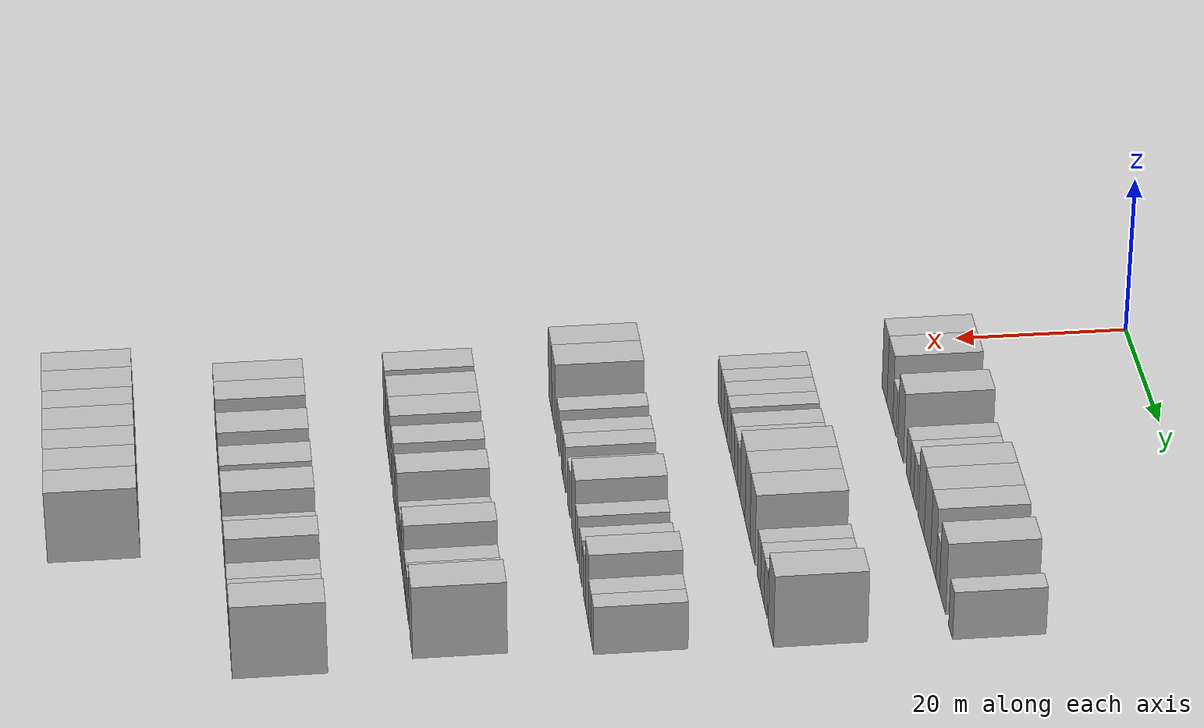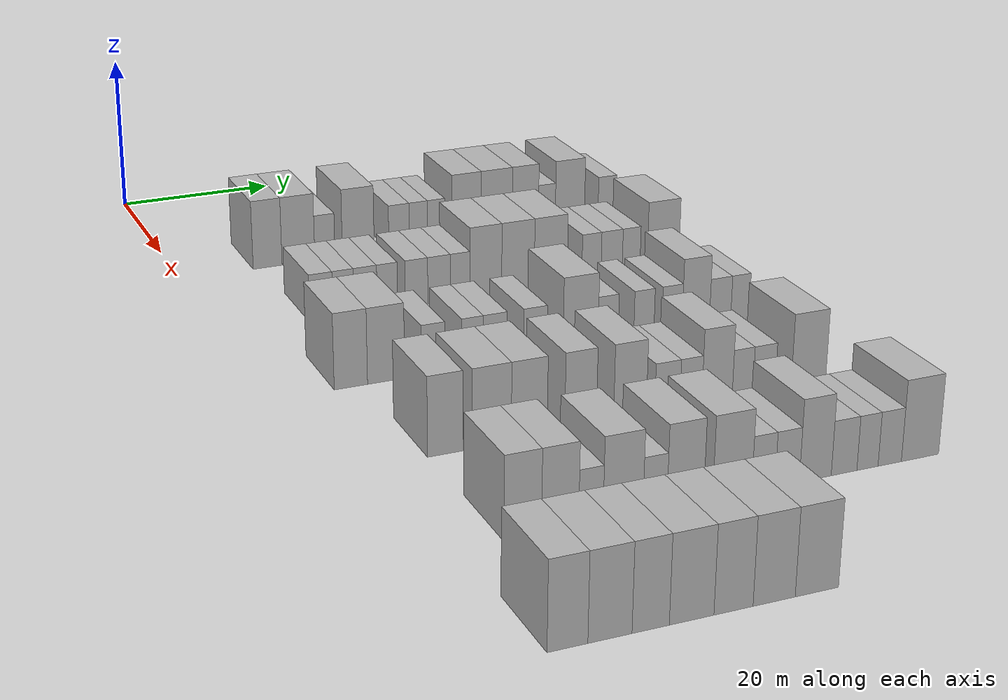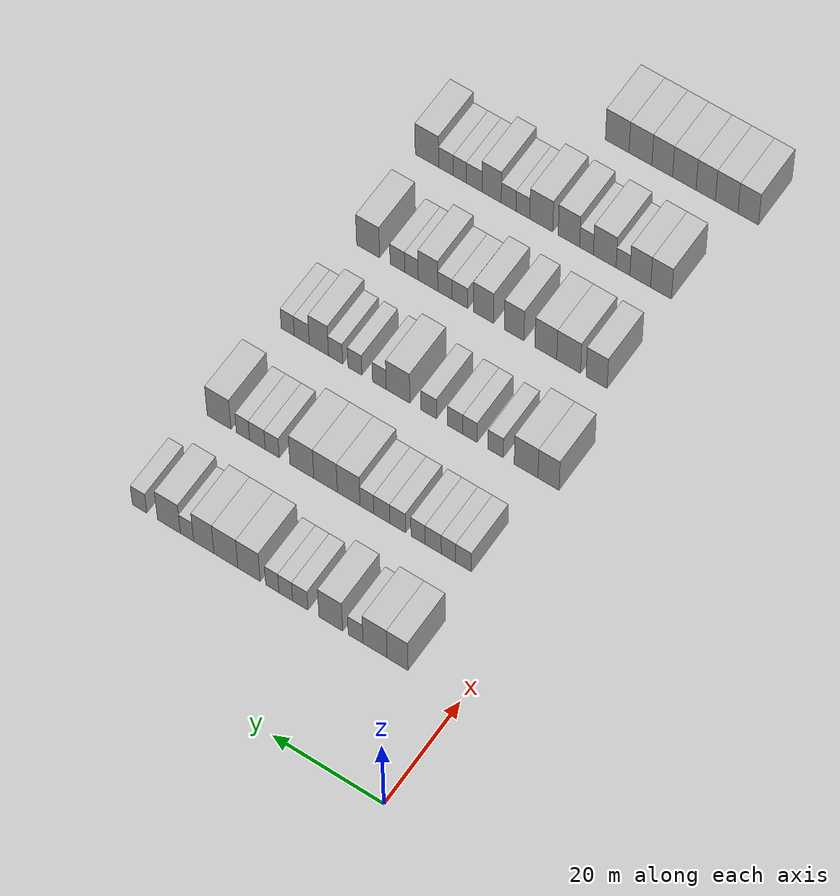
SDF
<sdf version="1.6">
 <world name="default">
  <model name="building_93">
   <static>1</static>
   <pose>25.0000 11.1989 0 0.000000 0.000000 0.000000</pose>
   <link name="link">
    <pose>0 0 4.50 0 0 0</pose>
    <collision name="collision"><geometry><box><size>10.0000 3.7826 9.0000</size></box></geometry></collision>
    <visual name="visual">
     <cast_shadows>0</cast_shadows>
     <geometry><box><size>10.0000 3.7826 9.0000</size></box></geometry>
     <material>
      <script>
       <uri>model://HANNAS_wall/materials/scripts</uri>
       <uri>model://HANNAS_wall/materials/textures</uri>
       <name>vrc/HANNAS_wall</name>
      </script>
     </material>
    </visual>
   </link>
  </model>
  <model name="building_94">
   <static>1</static>
   <pose>25.0000 15.2601 0 0.000000 0.000000 0.000000</pose>
   <link name="link">
    <pose>0 0 4.50 0 0 0</pose>
    <collision name="collision"><geometry><box><size>10.0000 4.3400 9.0000</size></box></geometry></collision>
    <visual name="visual">
     <cast_shadows>0</cast_shadows>
     <geometry><box><size>10.0000 4.3400 9.0000</size></box></geometry>
     <material>
      <script>
       <uri>model://HANNAS_wall/materials/scripts</uri>
       <uri>model://HANNAS_wall/materials/textures</uri>
       <name>vrc/HANNAS_wall</name>
      </script>
     </material>
    </visual>
   </link>
  </model>
  <model name="building_95">
   <static>1</static>
   <pose>25.0000 18.7738 0 0.000000 0.000000 0.000000</pose>
   <link name="link">
    <pose>0 0 3.00 0 0 0</pose>
    <collision name="collision"><geometry><box><size>10.0000 2.6872 6.0000</size></box></geometry></collision>
    <visual name="visual">
     <cast_shadows>0</cast_shadows>
     <geometry><box><size>10.0000 2.6872 6.0000</size></box></geometry>
     <material>
      <script>
       <uri>model://HANNAS_wall/materials/scripts</uri>
       <uri>model://HANNAS_wall/materials/textures</uri>
       <name>vrc/HANNAS_wall</name>
      </script>
     </material>
    </visual>
   </link>
  </model>
  <model name="building_96">
   <static>1</static>
   <pose>25.0000 23.2702 0 0.000000 0.000000 0.000000</pose>
   <link name="link">
    <pose>0 0 4.50 0 0 0</pose>
    <collision name="collision"><geometry><box><size>10.0000 4.3056 9.0000</size></box></geometry></collision>
    <visual name="visual">
     <cast_shadows>0</cast_shadows>
     <geometry><box><size>10.0000 4.3056 9.0000</size></box></geometry>
     <material>
      <script>
       <uri>model://HANNAS_wall/materials/scripts</uri>
       <uri>model://HANNAS_wall/materials/textures</uri>
       <name>vrc/HANNAS_wall</name>
      </script>
     </material>
    </visual>
   </link>
  </model>
  <model name="building_97">
   <static>1</static>
   <pose>25.0000 28.8278 0 0.000000 0.000000 0.000000</pose>
   <link name="link">
    <pose>0 0 3.00 0 0 0</pose>
    <collision name="collision"><geometry><box><size>10.0000 2.8097 6.0000</size></box></geometry></collision>
    <visual name="visual">
     <cast_shadows>0</cast_shadows>
     <geometry><box><size>10.0000 2.8097 6.0000</size></box></geometry>
     <material>
      <script>
       <uri>model://HANNAS_wall/materials/scripts</uri>
       <uri>model://HANNAS_wall/materials/textures</uri>
       <name>vrc/HANNAS_wall</name>
      </script>
     </material>
    </visual>
   </link>
  </model>
  <model name="building_98">
   <static>1</static>
   <pose>25.0000 31.4925 0 0.000000 0.000000 0.000000</pose>
   <link name="link">
    <pose>0 0 3.00 0 0 0</pose>
    <collision name="collision"><geometry><box><size>10.0000 2.5195 6.0000</size></box></geometry></collision>
    <visual name="visual">
     <cast_shadows>0</cast_shadows>
     <geometry><box><size>10.0000 2.5195 6.0000</size></box></geometry>
     <material>
      <script>
       <uri>model://HANNAS_wall/materials/scripts</uri>
       <uri>model://HANNAS_wall/materials/textures</uri>
       <name>vrc/HANNAS_wall</name>
      </script>
     </material>
    </visual>
   </link>
  </model>
  <model name="building_99">
   <static>1</static>
   <pose>25.0000 33.9566 0 0.000000 0.000000 0.000000</pose>
   <link name="link">
    <pose>0 0 3.00 0 0 0</pose>
    <collision name="collision"><geometry><box><size>10.0000 2.4087 6.0000</size></box></geometry></collision>
    <visual name="visual">
     <cast_shadows>0</cast_shadows>
     <geometry><box><size>10.0000 2.4087 6.0000</size></box></geometry>
     <material>
      <script>
       <uri>model://HANNAS_wall/materials/scripts</uri>
       <uri>model://HANNAS_wall/materials/textures</uri>
       <name>vrc/HANNAS_wall</name>
      </script>
     </material>
    </visual>
   </link>
  </model>
  <model name="building_100">
   <static>1</static>
   <pose>25.0000 38.2183 0 0.000000 0.000000 0.000000</pose>
   <link name="link">
    <pose>0 0 4.50 0 0 0</pose>
    <collision name="collision"><geometry><box><size>10.0000 4.1148 9.0000</size></box></geometry></collision>
    <visual name="visual">
     <cast_shadows>0</cast_shadows>
     <geometry><box><size>10.0000 4.1148 9.0000</size></box></geometry>
     <material>
      <script>
       <uri>model://HANNAS_wall/materials/scripts</uri>
       <uri>model://HANNAS_wall/materials/textures</uri>
       <name>vrc/HANNAS_wall</name>
      </script>
     </material>
    </visual>
   </link>
  </model>
  <model name="building_101">
   <static>1</static>
   <pose>25.0000 42.4826 0 0.000000 0.000000 0.000000</pose>
   <link name="link">
    <pose>0 0 4.50 0 0 0</pose>
    <collision name="collision"><geometry><box><size>10.0000 4.4137 9.0000</size></box></geometry></collision>
    <visual name="visual">
     <cast_shadows>0</cast_shadows>
     <geometry><box><size>10.0000 4.4137 9.0000</size></box></geometry>
     <material>
      <script>
       <uri>model://HANNAS_wall/materials/scripts</uri>
       <uri>model://HANNAS_wall/materials/textures</uri>
       <name>vrc/HANNAS_wall</name>
      </script>
     </material>
    </visual>
   </link>
  </model>
  <model name="building_102">
   <static>1</static>
   <pose>25.0000 46.5693 0 0.000000 0.000000 0.000000</pose>
   <link name="link">
    <pose>0 0 4.50 0 0 0</pose>
    <collision name="collision"><geometry><box><size>10.0000 3.7597 9.0000</size></box></geometry></collision>
    <visual name="visual">
     <cast_shadows>0</cast_shadows>
     <geometry><box><size>10.0000 3.7597 9.0000</size></box></geometry>
     <material>
      <script>
       <uri>model://HANNAS_wall/materials/scripts</uri>
       <uri>model://HANNAS_wall/materials/textures</uri>
       <name>vrc/HANNAS_wall</name>
      </script>
     </material>
    </visual>
   </link>
  </model>
  <model name="building_103">
   <static>1</static>
   <pose>25.0000 49.6717 0 0.000000 0.000000 0.000000</pose>
   <link name="link">
    <pose>0 0 3.00 0 0 0</pose>
    <collision name="collision"><geometry><box><size>10.0000 2.4451 6.0000</size></box></geometry></collision>
    <visual name="visual">
     <cast_shadows>0</cast_shadows>
     <geometry><box><size>10.0000 2.4451 6.0000</size></box></geometry>
     <material>
      <script>
       <uri>model://HANNAS_wall/materials/scripts</uri>
       <uri>model://HANNAS_wall/materials/textures</uri>
       <name>vrc/HANNAS_wall</name>
      </script>
     </material>
    </visual>
   </link>
  </model>
  <model name="building_104">
   <static>1</static>
   <pose>25.0000 53.0266 0 0.000000 0.000000 0.000000</pose>
   <link name="link">
    <pose>0 0 4.50 0 0 0</pose>
    <collision name="collision"><geometry><box><size>10.0000 4.2647 9.0000</size></box></geometry></collision>
    <visual name="visual">
     <cast_shadows>0</cast_shadows>
     <geometry><box><size>10.0000 4.2647 9.0000</size></box></geometry>
     <material>
      <script>
       <uri>model://HANNAS_wall/materials/scripts</uri>
       <uri>model://HANNAS_wall/materials/textures</uri>
       <name>vrc/HANNAS_wall</name>
      </script>
     </material>
    </visual>
   </link>
  </model>
  <model name="building_105">
   <static>1</static>
   <pose>25.0000 58.4947 0 0.000000 0.000000 0.000000</pose>
   <link name="link">
    <pose>0 0 3.00 0 0 0</pose>
    <collision name="collision"><geometry><box><size>10.0000 2.6715 6.0000</size></box></geometry></collision>
    <visual name="visual">
     <cast_shadows>0</cast_shadows>
     <geometry><box><size>10.0000 2.6715 6.0000</size></box></geometry>
     <material>
      <script>
       <uri>model://HANNAS_wall/materials/scripts</uri>
       <uri>model://HANNAS_wall/materials/textures</uri>
       <name>vrc/HANNAS_wall</name>
      </script>
     </material>
    </visual>
   </link>
  </model>
  <model name="building_257">
   <static>1</static>
   <pose>44.0000 12.0426 0 0.000000 0.000000 0.000000</pose>
   <link name="link">
    <pose>0 0 3.00 0 0 0</pose>
    <collision name="collision"><geometry><box><size>10.0000 2.8784 6.0000</size></box></geometry></collision>
    <visual name="visual">
     <cast_shadows>0</cast_shadows>
     <geometry><box><size>10.0000 2.8784 6.0000</size></box></geometry>
     <material>
      <script>
       <uri>model://HANNAS_wall/materials/scripts</uri>
       <uri>model://HANNAS_wall/materials/textures</uri>
       <name>vrc/HANNAS_wall</name>
      </script>
     </material>
    </visual>
   </link>
  </model>
  <model name="building_258">
   <static>1</static>
   <pose>44.0000 14.7832 0 0.000000 0.000000 0.000000</pose>
   <link name="link">
    <pose>0 0 3.00 0 0 0</pose>
    <collision name="collision"><geometry><box><size>10.0000 2.6027 6.0000</size></box></geometry></collision>
    <visual name="visual">
     <cast_shadows>0</cast_shadows>
     <geometry><box><size>10.0000 2.6027 6.0000</size></box></geometry>
     <material>
      <script>
       <uri>model://HANNAS_wall/materials/scripts</uri>
       <uri>model://HANNAS_wall/materials/textures</uri>
       <name>vrc/HANNAS_wall</name>
      </script>
     </material>
    </visual>
   </link>
  </model>
  <model name="building_259">
   <static>1</static>
   <pose>44.0000 17.5589 0 0.000000 0.000000 0.000000</pose>
   <link name="link">
    <pose>0 0 3.00 0 0 0</pose>
    <collision name="collision"><geometry><box><size>10.0000 2.9488 6.0000</size></box></geometry></collision>
    <visual name="visual">
     <cast_shadows>0</cast_shadows>
     <geometry><box><size>10.0000 2.9488 6.0000</size></box></geometry>
     <material>
      <script>
       <uri>model://HANNAS_wall/materials/scripts</uri>
       <uri>model://HANNAS_wall/materials/textures</uri>
       <name>vrc/HANNAS_wall</name>
      </script>
     </material>
    </visual>
   </link>
  </model>
  <model name="building_260">
   <static>1</static>
   <pose>44.0000 20.3204 0 0.000000 0.000000 0.000000</pose>
   <link name="link">
    <pose>0 0 3.00 0 0 0</pose>
    <collision name="collision"><geometry><box><size>10.0000 2.5742 6.0000</size></box></geometry></collision>
    <visual name="visual">
     <cast_shadows>0</cast_shadows>
     <geometry><box><size>10.0000 2.5742 6.0000</size></box></geometry>
     <material>
      <script>
       <uri>model://HANNAS_wall/materials/scripts</uri>
       <uri>model://HANNAS_wall/materials/textures</uri>
       <name>vrc/HANNAS_wall</name>
      </script>
     </material>
    </visual>
   </link>
  </model>
  <model name="building_261">
   <static>1</static>
   <pose>44.0000 24.0491 0 0.000000 0.000000 0.000000</pose>
   <link name="link">
    <pose>0 0 3.00 0 0 0</pose>
    <collision name="collision"><geometry><box><size>10.0000 2.8832 6.0000</size></box></geometry></collision>
    <visual name="visual">
     <cast_shadows>0</cast_shadows>
     <geometry><box><size>10.0000 2.8832 6.0000</size></box></geometry>
     <material>
      <script>
       <uri>model://HANNAS_wall/materials/scripts</uri>
       <uri>model://HANNAS_wall/materials/textures</uri>
       <name>vrc/HANNAS_wall</name>
      </script>
     </material>
    </visual>
   </link>
  </model>
  <model name="building_262">
   <static>1</static>
   <pose>44.0000 26.9556 0 0.000000 0.000000 0.000000</pose>
   <link name="link">
    <pose>0 0 3.00 0 0 0</pose>
    <collision name="collision"><geometry><box><size>10.0000 2.9300 6.0000</size></box></geometry></collision>
    <visual name="visual">
     <cast_shadows>0</cast_shadows>
     <geometry><box><size>10.0000 2.9300 6.0000</size></box></geometry>
     <material>
      <script>
       <uri>model://HANNAS_wall/materials/scripts</uri>
       <uri>model://HANNAS_wall/materials/textures</uri>
       <name>vrc/HANNAS_wall</name>
      </script>
     </material>
    </visual>
   </link>
  </model>
  <model name="building_263">
   <static>1</static>
   <pose>44.0000 29.6811 0 0.000000 0.000000 0.000000</pose>
   <link name="link">
    <pose>0 0 3.00 0 0 0</pose>
    <collision name="collision"><geometry><box><size>10.0000 2.5209 6.0000</size></box></geometry></collision>
    <visual name="visual">
     <cast_shadows>0</cast_shadows>
     <geometry><box><size>10.0000 2.5209 6.0000</size></box></geometry>
     <material>
      <script>
       <uri>model://HANNAS_wall/materials/scripts</uri>
       <uri>model://HANNAS_wall/materials/textures</uri>
       <name>vrc/HANNAS_wall</name>
      </script>
     </material>
    </visual>
   </link>
  </model>
  <model name="building_264">
   <static>1</static>
   <pose>44.0000 33.0307 0 0.000000 0.000000 0.000000</pose>
   <link name="link">
    <pose>0 0 4.50 0 0 0</pose>
    <collision name="collision"><geometry><box><size>10.0000 4.1783 9.0000</size></box></geometry></collision>
    <visual name="visual">
     <cast_shadows>0</cast_shadows>
     <geometry><box><size>10.0000 4.1783 9.0000</size></box></geometry>
     <material>
      <script>
       <uri>model://HANNAS_wall/materials/scripts</uri>
       <uri>model://HANNAS_wall/materials/textures</uri>
       <name>vrc/HANNAS_wall</name>
      </script>
     </material>
    </visual>
   </link>
  </model>
  <model name="building_265">
   <static>1</static>
   <pose>44.0000 37.2893 0 0.000000 0.000000 0.000000</pose>
   <link name="link">
    <pose>0 0 4.50 0 0 0</pose>
    <collision name="collision"><geometry><box><size>10.0000 4.3389 9.0000</size></box></geometry></collision>
    <visual name="visual">
     <cast_shadows>0</cast_shadows>
     <geometry><box><size>10.0000 4.3389 9.0000</size></box></geometry>
     <material>
      <script>
       <uri>model://HANNAS_wall/materials/scripts</uri>
       <uri>model://HANNAS_wall/materials/textures</uri>
       <name>vrc/HANNAS_wall</name>
      </script>
     </material>
    </visual>
   </link>
  </model>
  <model name="building_266">
   <static>1</static>
   <pose>44.0000 41.6738 0 0.000000 0.000000 0.000000</pose>
   <link name="link">
    <pose>0 0 4.50 0 0 0</pose>
    <collision name="collision"><geometry><box><size>10.0000 4.4302 9.0000</size></box></geometry></collision>
    <visual name="visual">
     <cast_shadows>0</cast_shadows>
     <geometry><box><size>10.0000 4.4302 9.0000</size></box></geometry>
     <material>
      <script>
       <uri>model://HANNAS_wall/materials/scripts</uri>
       <uri>model://HANNAS_wall/materials/textures</uri>
       <name>vrc/HANNAS_wall</name>
      </script>
     </material>
    </visual>
   </link>
  </model>
  <model name="building_267">
   <static>1</static>
   <pose>44.0000 47.2002 0 0.000000 0.000000 0.000000</pose>
   <link name="link">
    <pose>0 0 3.00 0 0 0</pose>
    <collision name="collision"><geometry><box><size>10.0000 2.6225 6.0000</size></box></geometry></collision>
    <visual name="visual">
     <cast_shadows>0</cast_shadows>
     <geometry><box><size>10.0000 2.6225 6.0000</size></box></geometry>
     <material>
      <script>
       <uri>model://HANNAS_wall/materials/scripts</uri>
       <uri>model://HANNAS_wall/materials/textures</uri>
       <name>vrc/HANNAS_wall</name>
      </script>
     </material>
    </visual>
   </link>
  </model>
  <model name="building_268">
   <static>1</static>
   <pose>44.0000 49.9690 0 0.000000 0.000000 0.000000</pose>
   <link name="link">
    <pose>0 0 3.00 0 0 0</pose>
    <collision name="collision"><geometry><box><size>10.0000 2.9151 6.0000</size></box></geometry></collision>
    <visual name="visual">
     <cast_shadows>0</cast_shadows>
     <geometry><box><size>10.0000 2.9151 6.0000</size></box></geometry>
     <material>
      <script>
       <uri>model://HANNAS_wall/materials/scripts</uri>
       <uri>model://HANNAS_wall/materials/textures</uri>
       <name>vrc/HANNAS_wall</name>
      </script>
     </material>
    </visual>
   </link>
  </model>
  <model name="building_269">
   <static>1</static>
   <pose>44.0000 52.6610 0 0.000000 0.000000 0.000000</pose>
   <link name="link">
    <pose>0 0 3.00 0 0 0</pose>
    <collision name="collision"><geometry><box><size>10.0000 2.4689 6.0000</size></box></geometry></collision>
    <visual name="visual">
     <cast_shadows>0</cast_shadows>
     <geometry><box><size>10.0000 2.4689 6.0000</size></box></geometry>
     <material>
      <script>
       <uri>model://HANNAS_wall/materials/scripts</uri>
       <uri>model://HANNAS_wall/materials/textures</uri>
       <name>vrc/HANNAS_wall</name>
      </script>
     </material>
    </visual>
   </link>
  </model>
  <model name="building_270">
   <static>1</static>
   <pose>44.0000 57.1227 0 0.000000 0.000000 0.000000</pose>
   <link name="link">
    <pose>0 0 4.50 0 0 0</pose>
    <collision name="collision"><geometry><box><size>10.0000 4.4546 9.0000</size></box></geometry></collision>
    <visual name="visual">
     <cast_shadows>0</cast_shadows>
     <geometry><box><size>10.0000 4.4546 9.0000</size></box></geometry>
     <material>
      <script>
       <uri>model://HANNAS_wall/materials/scripts</uri>
       <uri>model://HANNAS_wall/materials/textures</uri>
       <name>vrc/HANNAS_wall</name>
      </script>
     </material>
    </visual>
   </link>
  </model>
  <model name="building_438">
   <static>1</static>
   <pose>63.0000 9.1700 0 0.000000 0.000000 0.000000</pose>
   <link name="link">
    <pose>0 0 4.50 0 0 0</pose>
    <collision name="collision"><geometry><box><size>10.0000 3.8497 9.0000</size></box></geometry></collision>
    <visual name="visual">
     <cast_shadows>0</cast_shadows>
     <geometry><box><size>10.0000 3.8497 9.0000</size></box></geometry>
     <material>
      <script>
       <uri>model://HANNAS_wall/materials/scripts</uri>
       <uri>model://HANNAS_wall/materials/textures</uri>
       <name>vrc/HANNAS_wall</name>
      </script>
     </material>
    </visual>
   </link>
  </model>
  <model name="building_439">
   <static>1</static>
   <pose>63.0000 13.2630 0 0.000000 0.000000 0.000000</pose>
   <link name="link">
    <pose>0 0 4.50 0 0 0</pose>
    <collision name="collision"><geometry><box><size>10.0000 4.3361 9.0000</size></box></geometry></collision>
    <visual name="visual">
     <cast_shadows>0</cast_shadows>
     <geometry><box><size>10.0000 4.3361 9.0000</size></box></geometry>
     <material>
      <script>
       <uri>model://HANNAS_wall/materials/scripts</uri>
       <uri>model://HANNAS_wall/materials/textures</uri>
       <name>vrc/HANNAS_wall</name>
      </script>
     </material>
    </visual>
   </link>
  </model>
  <model name="building_440">
   <static>1</static>
   <pose>63.0000 18.8301 0 0.000000 0.000000 0.000000</pose>
   <link name="link">
    <pose>0 0 3.00 0 0 0</pose>
    <collision name="collision"><geometry><box><size>10.0000 2.7982 6.0000</size></box></geometry></collision>
    <visual name="visual">
     <cast_shadows>0</cast_shadows>
     <geometry><box><size>10.0000 2.7982 6.0000</size></box></geometry>
     <material>
      <script>
       <uri>model://HANNAS_wall/materials/scripts</uri>
       <uri>model://HANNAS_wall/materials/textures</uri>
       <name>vrc/HANNAS_wall</name>
      </script>
     </material>
    </visual>
   </link>
  </model>
  <model name="building_441">
   <static>1</static>
   <pose>63.0000 23.5392 0 0.000000 0.000000 0.000000</pose>
   <link name="link">
    <pose>0 0 3.00 0 0 0</pose>
    <collision name="collision"><geometry><box><size>10.0000 2.6200 6.0000</size></box></geometry></collision>
    <visual name="visual">
     <cast_shadows>0</cast_shadows>
     <geometry><box><size>10.0000 2.6200 6.0000</size></box></geometry>
     <material>
      <script>
       <uri>model://HANNAS_wall/materials/scripts</uri>
       <uri>model://HANNAS_wall/materials/textures</uri>
       <name>vrc/HANNAS_wall</name>
      </script>
     </material>
    </visual>
   </link>
  </model>
  <model name="building_442">
   <static>1</static>
   <pose>63.0000 26.2897 0 0.000000 0.000000 0.000000</pose>
   <link name="link">
    <pose>0 0 3.00 0 0 0</pose>
    <collision name="collision"><geometry><box><size>10.0000 2.8811 6.0000</size></box></geometry></collision>
    <visual name="visual">
     <cast_shadows>0</cast_shadows>
     <geometry><box><size>10.0000 2.8811 6.0000</size></box></geometry>
     <material>
      <script>
       <uri>model://HANNAS_wall/materials/scripts</uri>
       <uri>model://HANNAS_wall/materials/textures</uri>
       <name>vrc/HANNAS_wall</name>
      </script>
     </material>
    </visual>
   </link>
  </model>
  <model name="building_443">
   <static>1</static>
   <pose>63.0000 31.1869 0 0.000000 0.000000 0.000000</pose>
   <link name="link">
    <pose>0 0 3.00 0 0 0</pose>
    <collision name="collision"><geometry><box><size>10.0000 2.9131 6.0000</size></box></geometry></collision>
    <visual name="visual">
     <cast_shadows>0</cast_shadows>
     <geometry><box><size>10.0000 2.9131 6.0000</size></box></geometry>
     <material>
      <script>
       <uri>model://HANNAS_wall/materials/scripts</uri>
       <uri>model://HANNAS_wall/materials/textures</uri>
       <name>vrc/HANNAS_wall</name>
      </script>
     </material>
    </visual>
   </link>
  </model>
  <model name="building_444">
   <static>1</static>
   <pose>63.0000 36.8363 0 0.000000 0.000000 0.000000</pose>
   <link name="link">
    <pose>0 0 4.50 0 0 0</pose>
    <collision name="collision"><geometry><box><size>10.0000 4.3857 9.0000</size></box></geometry></collision>
    <visual name="visual">
     <cast_shadows>0</cast_shadows>
     <geometry><box><size>10.0000 4.3857 9.0000</size></box></geometry>
     <material>
      <script>
       <uri>model://HANNAS_wall/materials/scripts</uri>
       <uri>model://HANNAS_wall/materials/textures</uri>
       <name>vrc/HANNAS_wall</name>
      </script>
     </material>
    </visual>
   </link>
  </model>
  <model name="building_445">
   <static>1</static>
   <pose>63.0000 40.3064 0 0.000000 0.000000 0.000000</pose>
   <link name="link">
    <pose>0 0 3.00 0 0 0</pose>
    <collision name="collision"><geometry><box><size>10.0000 2.5545 6.0000</size></box></geometry></collision>
    <visual name="visual">
     <cast_shadows>0</cast_shadows>
     <geometry><box><size>10.0000 2.5545 6.0000</size></box></geometry>
     <material>
      <script>
       <uri>model://HANNAS_wall/materials/scripts</uri>
       <uri>model://HANNAS_wall/materials/textures</uri>
       <name>vrc/HANNAS_wall</name>
      </script>
     </material>
    </visual>
   </link>
  </model>
  <model name="building_446">
   <static>1</static>
   <pose>63.0000 44.8817 0 0.000000 0.000000 0.000000</pose>
   <link name="link">
    <pose>0 0 3.00 0 0 0</pose>
    <collision name="collision"><geometry><box><size>10.0000 2.5960 6.0000</size></box></geometry></collision>
    <visual name="visual">
     <cast_shadows>0</cast_shadows>
     <geometry><box><size>10.0000 2.5960 6.0000</size></box></geometry>
     <material>
      <script>
       <uri>model://HANNAS_wall/materials/scripts</uri>
       <uri>model://HANNAS_wall/materials/textures</uri>
       <name>vrc/HANNAS_wall</name>
      </script>
     </material>
    </visual>
   </link>
  </model>
  <model name="building_447">
   <static>1</static>
   <pose>63.0000 48.5055 0 0.000000 0.000000 0.000000</pose>
   <link name="link">
    <pose>0 0 3.00 0 0 0</pose>
    <collision name="collision"><geometry><box><size>10.0000 2.6515 6.0000</size></box></geometry></collision>
    <visual name="visual">
     <cast_shadows>0</cast_shadows>
     <geometry><box><size>10.0000 2.6515 6.0000</size></box></geometry>
     <material>
      <script>
       <uri>model://HANNAS_wall/materials/scripts</uri>
       <uri>model://HANNAS_wall/materials/textures</uri>
       <name>vrc/HANNAS_wall</name>
      </script>
     </material>
    </visual>
   </link>
  </model>
  <model name="building_448">
   <static>1</static>
   <pose>63.0000 51.6327 0 0.000000 0.000000 0.000000</pose>
   <link name="link">
    <pose>0 0 4.50 0 0 0</pose>
    <collision name="collision"><geometry><box><size>10.0000 3.6030 9.0000</size></box></geometry></collision>
    <visual name="visual">
     <cast_shadows>0</cast_shadows>
     <geometry><box><size>10.0000 3.6030 9.0000</size></box></geometry>
     <material>
      <script>
       <uri>model://HANNAS_wall/materials/scripts</uri>
       <uri>model://HANNAS_wall/materials/textures</uri>
       <name>vrc/HANNAS_wall</name>
      </script>
     </material>
    </visual>
   </link>
  </model>
  <model name="building_449">
   <static>1</static>
   <pose>63.0000 54.8472 0 0.000000 0.000000 0.000000</pose>
   <link name="link">
    <pose>0 0 3.00 0 0 0</pose>
    <collision name="collision"><geometry><box><size>10.0000 2.8260 6.0000</size></box></geometry></collision>
    <visual name="visual">
     <cast_shadows>0</cast_shadows>
     <geometry><box><size>10.0000 2.8260 6.0000</size></box></geometry>
     <material>
      <script>
       <uri>model://HANNAS_wall/materials/scripts</uri>
       <uri>model://HANNAS_wall/materials/textures</uri>
       <name>vrc/HANNAS_wall</name>
      </script>
     </material>
    </visual>
   </link>
  </model>
  <model name="building_450">
   <static>1</static>
   <pose>63.0000 57.4917 0 0.000000 0.000000 0.000000</pose>
   <link name="link">
    <pose>0 0 3.00 0 0 0</pose>
    <collision name="collision"><geometry><box><size>10.0000 2.4629 6.0000</size></box></geometry></collision>
    <visual name="visual">
     <cast_shadows>0</cast_shadows>
     <geometry><box><size>10.0000 2.4629 6.0000</size></box></geometry>
     <material>
      <script>
       <uri>model://HANNAS_wall/materials/scripts</uri>
       <uri>model://HANNAS_wall/materials/textures</uri>
       <name>vrc/HANNAS_wall</name>
      </script>
     </material>
    </visual>
   </link>
  </model>
  <model name="building_591">
   <static>1</static>
   <pose>82.0000 12.7676 0 0.000000 0.000000 0.000000</pose>
   <link name="link">
    <pose>0 0 4.50 0 0 0</pose>
    <collision name="collision"><geometry><box><size>10.0000 3.8655 9.0000</size></box></geometry></collision>
    <visual name="visual">
     <cast_shadows>0</cast_shadows>
     <geometry><box><size>10.0000 3.8655 9.0000</size></box></geometry>
     <material>
      <script>
       <uri>model://HANNAS_wall/materials/scripts</uri>
       <uri>model://HANNAS_wall/materials/textures</uri>
       <name>vrc/HANNAS_wall</name>
      </script>
     </material>
    </visual>
   </link>
  </model>
  <model name="building_592">
   <static>1</static>
   <pose>82.0000 17.8945 0 0.000000 0.000000 0.000000</pose>
   <link name="link">
    <pose>0 0 4.50 0 0 0</pose>
    <collision name="collision"><geometry><box><size>10.0000 4.3883 9.0000</size></box></geometry></collision>
    <visual name="visual">
     <cast_shadows>0</cast_shadows>
     <geometry><box><size>10.0000 4.3883 9.0000</size></box></geometry>
     <material>
      <script>
       <uri>model://HANNAS_wall/materials/scripts</uri>
       <uri>model://HANNAS_wall/materials/textures</uri>
       <name>vrc/HANNAS_wall</name>
      </script>
     </material>
    </visual>
   </link>
  </model>
  <model name="building_593">
   <static>1</static>
   <pose>82.0000 22.1124 0 0.000000 0.000000 0.000000</pose>
   <link name="link">
    <pose>0 0 4.50 0 0 0</pose>
    <collision name="collision"><geometry><box><size>10.0000 4.0475 9.0000</size></box></geometry></collision>
    <visual name="visual">
     <cast_shadows>0</cast_shadows>
     <geometry><box><size>10.0000 4.0475 9.0000</size></box></geometry>
     <material>
      <script>
       <uri>model://HANNAS_wall/materials/scripts</uri>
       <uri>model://HANNAS_wall/materials/textures</uri>
       <name>vrc/HANNAS_wall</name>
      </script>
     </material>
    </visual>
   </link>
  </model>
  <model name="building_594">
   <static>1</static>
   <pose>82.0000 27.9555 0 0.000000 0.000000 0.000000</pose>
   <link name="link">
    <pose>0 0 4.50 0 0 0</pose>
    <collision name="collision"><geometry><box><size>10.0000 3.6387 9.0000</size></box></geometry></collision>
    <visual name="visual">
     <cast_shadows>0</cast_shadows>
     <geometry><box><size>10.0000 3.6387 9.0000</size></box></geometry>
     <material>
      <script>
       <uri>model://HANNAS_wall/materials/scripts</uri>
       <uri>model://HANNAS_wall/materials/textures</uri>
       <name>vrc/HANNAS_wall</name>
      </script>
     </material>
    </visual>
   </link>
  </model>
  <model name="building_595">
   <static>1</static>
   <pose>82.0000 33.6863 0 0.000000 0.000000 0.000000</pose>
   <link name="link">
    <pose>0 0 4.50 0 0 0</pose>
    <collision name="collision"><geometry><box><size>10.0000 3.8228 9.0000</size></box></geometry></collision>
    <visual name="visual">
     <cast_shadows>0</cast_shadows>
     <geometry><box><size>10.0000 3.8228 9.0000</size></box></geometry>
     <material>
      <script>
       <uri>model://HANNAS_wall/materials/scripts</uri>
       <uri>model://HANNAS_wall/materials/textures</uri>
       <name>vrc/HANNAS_wall</name>
      </script>
     </material>
    </visual>
   </link>
  </model>
  <model name="building_596">
   <static>1</static>
   <pose>82.0000 38.0942 0 0.000000 0.000000 0.000000</pose>
   <link name="link">
    <pose>0 0 3.00 0 0 0</pose>
    <collision name="collision"><geometry><box><size>10.0000 2.9931 6.0000</size></box></geometry></collision>
    <visual name="visual">
     <cast_shadows>0</cast_shadows>
     <geometry><box><size>10.0000 2.9931 6.0000</size></box></geometry>
     <material>
      <script>
       <uri>model://HANNAS_wall/materials/scripts</uri>
       <uri>model://HANNAS_wall/materials/textures</uri>
       <name>vrc/HANNAS_wall</name>
      </script>
     </material>
    </visual>
   </link>
  </model>
  <model name="building_597">
   <static>1</static>
   <pose>82.0000 40.9116 0 0.000000 0.000000 0.000000</pose>
   <link name="link">
    <pose>0 0 3.00 0 0 0</pose>
    <collision name="collision"><geometry><box><size>10.0000 2.6415 6.0000</size></box></geometry></collision>
    <visual name="visual">
     <cast_shadows>0</cast_shadows>
     <geometry><box><size>10.0000 2.6415 6.0000</size></box></geometry>
     <material>
      <script>
       <uri>model://HANNAS_wall/materials/scripts</uri>
       <uri>model://HANNAS_wall/materials/textures</uri>
       <name>vrc/HANNAS_wall</name>
      </script>
     </material>
    </visual>
   </link>
  </model>
  <model name="building_598">
   <static>1</static>
   <pose>82.0000 44.0762 0 0.000000 0.000000 0.000000</pose>
   <link name="link">
    <pose>0 0 4.50 0 0 0</pose>
    <collision name="collision"><geometry><box><size>10.0000 3.6877 9.0000</size></box></geometry></collision>
    <visual name="visual">
     <cast_shadows>0</cast_shadows>
     <geometry><box><size>10.0000 3.6877 9.0000</size></box></geometry>
     <material>
      <script>
       <uri>model://HANNAS_wall/materials/scripts</uri>
       <uri>model://HANNAS_wall/materials/textures</uri>
       <name>vrc/HANNAS_wall</name>
      </script>
     </material>
    </visual>
   </link>
  </model>
  <model name="building_599">
   <static>1</static>
   <pose>82.0000 47.1841 0 0.000000 0.000000 0.000000</pose>
   <link name="link">
    <pose>0 0 3.00 0 0 0</pose>
    <collision name="collision"><geometry><box><size>10.0000 2.5282 6.0000</size></box></geometry></collision>
    <visual name="visual">
     <cast_shadows>0</cast_shadows>
     <geometry><box><size>10.0000 2.5282 6.0000</size></box></geometry>
     <material>
      <script>
       <uri>model://HANNAS_wall/materials/scripts</uri>
       <uri>model://HANNAS_wall/materials/textures</uri>
       <name>vrc/HANNAS_wall</name>
      </script>
     </material>
    </visual>
   </link>
  </model>
  <model name="building_600">
   <static>1</static>
   <pose>82.0000 49.8265 0 0.000000 0.000000 0.000000</pose>
   <link name="link">
    <pose>0 0 3.00 0 0 0</pose>
    <collision name="collision"><geometry><box><size>10.0000 2.7565 6.0000</size></box></geometry></collision>
    <visual name="visual">
     <cast_shadows>0</cast_shadows>
     <geometry><box><size>10.0000 2.7565 6.0000</size></box></geometry>
     <material>
      <script>
       <uri>model://HANNAS_wall/materials/scripts</uri>
       <uri>model://HANNAS_wall/materials/textures</uri>
       <name>vrc/HANNAS_wall</name>
      </script>
     </material>
    </visual>
   </link>
  </model>
  <model name="building_601">
   <static>1</static>
   <pose>82.0000 55.3732 0 0.000000 0.000000 0.000000</pose>
   <link name="link">
    <pose>0 0 4.50 0 0 0</pose>
    <collision name="collision"><geometry><box><size>10.0000 4.3368 9.0000</size></box></geometry></collision>
    <visual name="visual">
     <cast_shadows>0</cast_shadows>
     <geometry><box><size>10.0000 4.3368 9.0000</size></box></geometry>
     <material>
      <script>
       <uri>model://HANNAS_wall/materials/scripts</uri>
       <uri>model://HANNAS_wall/materials/textures</uri>
       <name>vrc/HANNAS_wall</name>
      </script>
     </material>
    </visual>
   </link>
  </model>
  <model name="building_751">
   <static>1</static>
   <pose>101.0000 13.1063 0 0.000000 0.000000 0.000000</pose>
   <link name="link">
    <pose>0 0 4.50 0 0 0</pose>
    <collision name="collision"><geometry><box><size>10.0000 3.8407 9.0000</size></box></geometry></collision>
    <visual name="visual">
     <cast_shadows>0</cast_shadows>
     <geometry><box><size>10.0000 3.8407 9.0000</size></box></geometry>
     <material>
      <script>
       <uri>model://HANNAS_wall/materials/scripts</uri>
       <uri>model://HANNAS_wall/materials/textures</uri>
       <name>vrc/HANNAS_wall</name>
      </script>
     </material>
    </visual>
   </link>
  </model>
  <model name="building_752">
   <static>1</static>
   <pose>101.0000 16.9521 0 0.000000 0.000000 0.000000</pose>
   <link name="link">
    <pose>0 0 4.50 0 0 0</pose>
    <collision name="collision"><geometry><box><size>10.0000 3.8510 9.0000</size></box></geometry></collision>
    <visual name="visual">
     <cast_shadows>0</cast_shadows>
     <geometry><box><size>10.0000 3.8510 9.0000</size></box></geometry>
     <material>
      <script>
       <uri>model://HANNAS_wall/materials/scripts</uri>
       <uri>model://HANNAS_wall/materials/textures</uri>
       <name>vrc/HANNAS_wall</name>
      </script>
     </material>
    </visual>
   </link>
  </model>
  <model name="building_753">
   <static>1</static>
   <pose>101.0000 20.1571 0 0.000000 0.000000 0.000000</pose>
   <link name="link">
    <pose>0 0 3.00 0 0 0</pose>
    <collision name="collision"><geometry><box><size>10.0000 2.5590 6.0000</size></box></geometry></collision>
    <visual name="visual">
     <cast_shadows>0</cast_shadows>
     <geometry><box><size>10.0000 2.5590 6.0000</size></box></geometry>
     <material>
      <script>
       <uri>model://HANNAS_wall/materials/scripts</uri>
       <uri>model://HANNAS_wall/materials/textures</uri>
       <name>vrc/HANNAS_wall</name>
      </script>
     </material>
    </visual>
   </link>
  </model>
  <model name="building_754">
   <static>1</static>
   <pose>101.0000 23.5546 0 0.000000 0.000000 0.000000</pose>
   <link name="link">
    <pose>0 0 4.50 0 0 0</pose>
    <collision name="collision"><geometry><box><size>10.0000 4.2359 9.0000</size></box></geometry></collision>
    <visual name="visual">
     <cast_shadows>0</cast_shadows>
     <geometry><box><size>10.0000 4.2359 9.0000</size></box></geometry>
     <material>
      <script>
       <uri>model://HANNAS_wall/materials/scripts</uri>
       <uri>model://HANNAS_wall/materials/textures</uri>
       <name>vrc/HANNAS_wall</name>
      </script>
     </material>
    </visual>
   </link>
  </model>
  <model name="building_755">
   <static>1</static>
   <pose>101.0000 26.9599 0 0.000000 0.000000 0.000000</pose>
   <link name="link">
    <pose>0 0 3.00 0 0 0</pose>
    <collision name="collision"><geometry><box><size>10.0000 2.5747 6.0000</size></box></geometry></collision>
    <visual name="visual">
     <cast_shadows>0</cast_shadows>
     <geometry><box><size>10.0000 2.5747 6.0000</size></box></geometry>
     <material>
      <script>
       <uri>model://HANNAS_wall/materials/scripts</uri>
       <uri>model://HANNAS_wall/materials/textures</uri>
       <name>vrc/HANNAS_wall</name>
      </script>
     </material>
    </visual>
   </link>
  </model>
  <model name="building_756">
   <static>1</static>
   <pose>101.0000 30.2482 0 0.000000 0.000000 0.000000</pose>
   <link name="link">
    <pose>0 0 4.50 0 0 0</pose>
    <collision name="collision"><geometry><box><size>10.0000 4.0020 9.0000</size></box></geometry></collision>
    <visual name="visual">
     <cast_shadows>0</cast_shadows>
     <geometry><box><size>10.0000 4.0020 9.0000</size></box></geometry>
     <material>
      <script>
       <uri>model://HANNAS_wall/materials/scripts</uri>
       <uri>model://HANNAS_wall/materials/textures</uri>
       <name>vrc/HANNAS_wall</name>
      </script>
     </material>
    </visual>
   </link>
  </model>
  <model name="building_757">
   <static>1</static>
   <pose>101.0000 35.4116 0 0.000000 0.000000 0.000000</pose>
   <link name="link">
    <pose>0 0 4.50 0 0 0</pose>
    <collision name="collision"><geometry><box><size>10.0000 4.3247 9.0000</size></box></geometry></collision>
    <visual name="visual">
     <cast_shadows>0</cast_shadows>
     <geometry><box><size>10.0000 4.3247 9.0000</size></box></geometry>
     <material>
      <script>
       <uri>model://HANNAS_wall/materials/scripts</uri>
       <uri>model://HANNAS_wall/materials/textures</uri>
       <name>vrc/HANNAS_wall</name>
      </script>
     </material>
    </visual>
   </link>
  </model>
  <model name="building_758">
   <static>1</static>
   <pose>101.0000 38.8806 0 0.000000 0.000000 0.000000</pose>
   <link name="link">
    <pose>0 0 3.00 0 0 0</pose>
    <collision name="collision"><geometry><box><size>10.0000 2.6133 6.0000</size></box></geometry></collision>
    <visual name="visual">
     <cast_shadows>0</cast_shadows>
     <geometry><box><size>10.0000 2.6133 6.0000</size></box></geometry>
     <material>
      <script>
       <uri>model://HANNAS_wall/materials/scripts</uri>
       <uri>model://HANNAS_wall/materials/textures</uri>
       <name>vrc/HANNAS_wall</name>
      </script>
     </material>
    </visual>
   </link>
  </model>
  <model name="building_759">
   <static>1</static>
   <pose>101.0000 41.5730 0 0.000000 0.000000 0.000000</pose>
   <link name="link">
    <pose>0 0 3.00 0 0 0</pose>
    <collision name="collision"><geometry><box><size>10.0000 2.7716 6.0000</size></box></geometry></collision>
    <visual name="visual">
     <cast_shadows>0</cast_shadows>
     <geometry><box><size>10.0000 2.7716 6.0000</size></box></geometry>
     <material>
      <script>
       <uri>model://HANNAS_wall/materials/scripts</uri>
       <uri>model://HANNAS_wall/materials/textures</uri>
       <name>vrc/HANNAS_wall</name>
      </script>
     </material>
    </visual>
   </link>
  </model>
  <model name="building_760">
   <static>1</static>
   <pose>101.0000 44.7868 0 0.000000 0.000000 0.000000</pose>
   <link name="link">
    <pose>0 0 4.50 0 0 0</pose>
    <collision name="collision"><geometry><box><size>10.0000 3.6560 9.0000</size></box></geometry></collision>
    <visual name="visual">
     <cast_shadows>0</cast_shadows>
     <geometry><box><size>10.0000 3.6560 9.0000</size></box></geometry>
     <material>
      <script>
       <uri>model://HANNAS_wall/materials/scripts</uri>
       <uri>model://HANNAS_wall/materials/textures</uri>
       <name>vrc/HANNAS_wall</name>
      </script>
     </material>
    </visual>
   </link>
  </model>
  <model name="building_761">
   <static>1</static>
   <pose>101.0000 48.1039 0 0.000000 0.000000 0.000000</pose>
   <link name="link">
    <pose>0 0 3.00 0 0 0</pose>
    <collision name="collision"><geometry><box><size>10.0000 2.9783 6.0000</size></box></geometry></collision>
    <visual name="visual">
     <cast_shadows>0</cast_shadows>
     <geometry><box><size>10.0000 2.9783 6.0000</size></box></geometry>
     <material>
      <script>
       <uri>model://HANNAS_wall/materials/scripts</uri>
       <uri>model://HANNAS_wall/materials/textures</uri>
       <name>vrc/HANNAS_wall</name>
      </script>
     </material>
    </visual>
   </link>
  </model>
  <model name="building_762">
   <static>1</static>
   <pose>101.0000 50.8319 0 0.000000 0.000000 0.000000</pose>
   <link name="link">
    <pose>0 0 3.00 0 0 0</pose>
    <collision name="collision"><geometry><box><size>10.0000 2.4775 6.0000</size></box></geometry></collision>
    <visual name="visual">
     <cast_shadows>0</cast_shadows>
     <geometry><box><size>10.0000 2.4775 6.0000</size></box></geometry>
     <material>
      <script>
       <uri>model://HANNAS_wall/materials/scripts</uri>
       <uri>model://HANNAS_wall/materials/textures</uri>
       <name>vrc/HANNAS_wall</name>
      </script>
     </material>
    </visual>
   </link>
  </model>
  <model name="building_763">
   <static>1</static>
   <pose>101.0000 53.4487 0 0.000000 0.000000 0.000000</pose>
   <link name="link">
    <pose>0 0 3.00 0 0 0</pose>
    <collision name="collision"><geometry><box><size>10.0000 2.7562 6.0000</size></box></geometry></collision>
    <visual name="visual">
     <cast_shadows>0</cast_shadows>
     <geometry><box><size>10.0000 2.7562 6.0000</size></box></geometry>
     <material>
      <script>
       <uri>model://HANNAS_wall/materials/scripts</uri>
       <uri>model://HANNAS_wall/materials/textures</uri>
       <name>vrc/HANNAS_wall</name>
      </script>
     </material>
    </visual>
   </link>
  </model>
  <model name="building_764">
   <static>1</static>
   <pose>101.0000 57.0503 0 0.000000 0.000000 0.000000</pose>
   <link name="link">
    <pose>0 0 4.50 0 0 0</pose>
    <collision name="collision"><geometry><box><size>10.0000 4.4471 9.0000</size></box></geometry></collision>
    <visual name="visual">
     <cast_shadows>0</cast_shadows>
     <geometry><box><size>10.0000 4.4471 9.0000</size></box></geometry>
     <material>
      <script>
       <uri>model://HANNAS_wall/materials/scripts</uri>
       <uri>model://HANNAS_wall/materials/textures</uri>
       <name>vrc/HANNAS_wall</name>
      </script>
     </material>
    </visual>
   </link>
  </model>
  <model name="building_924">
   <static>1</static>
   <pose>120.0000 8.9770 0 0.000000 0.000000 0.000000</pose>
   <link name="link">
    <pose>0 0 4.50 0 0 0</pose>
    <collision name="collision"><geometry><box><size>10.0000 3.8189 9.0000</size></box></geometry></collision>
    <visual name="visual">
     <cast_shadows>0</cast_shadows>
     <geometry><box><size>10.0000 3.8189 9.0000</size></box></geometry>
     <material>
      <script>
       <uri>model://HANNAS_wall/materials/scripts</uri>
       <uri>model://HANNAS_wall/materials/textures</uri>
       <name>vrc/HANNAS_wall</name>
      </script>
     </material>
    </visual>
   </link>
  </model>
  <model name="building_925">
   <static>1</static>
   <pose>120.0000 12.9840 0 0.000000 0.000000 0.000000</pose>
   <link name="link">
    <pose>0 0 4.50 0 0 0</pose>
    <collision name="collision"><geometry><box><size>10.0000 4.1953 9.0000</size></box></geometry></collision>
    <visual name="visual">
     <cast_shadows>0</cast_shadows>
     <geometry><box><size>10.0000 4.1953 9.0000</size></box></geometry>
     <material>
      <script>
       <uri>model://HANNAS_wall/materials/scripts</uri>
       <uri>model://HANNAS_wall/materials/textures</uri>
       <name>vrc/HANNAS_wall</name>
      </script>
     </material>
    </visual>
   </link>
  </model>
  <model name="building_926">
   <static>1</static>
   <pose>120.0000 16.8819 0 0.000000 0.000000 0.000000</pose>
   <link name="link">
    <pose>0 0 4.50 0 0 0</pose>
    <collision name="collision"><geometry><box><size>10.0000 3.6004 9.0000</size></box></geometry></collision>
    <visual name="visual">
     <cast_shadows>0</cast_shadows>
     <geometry><box><size>10.0000 3.6004 9.0000</size></box></geometry>
     <material>
      <script>
       <uri>model://HANNAS_wall/materials/scripts</uri>
       <uri>model://HANNAS_wall/materials/textures</uri>
       <name>vrc/HANNAS_wall</name>
      </script>
     </material>
    </visual>
   </link>
  </model>
  <model name="building_927">
   <static>1</static>
   <pose>120.0000 20.8706 0 0.000000 0.000000 0.000000</pose>
   <link name="link">
    <pose>0 0 4.50 0 0 0</pose>
    <collision name="collision"><geometry><box><size>10.0000 4.3770 9.0000</size></box></geometry></collision>
    <visual name="visual">
     <cast_shadows>0</cast_shadows>
     <geometry><box><size>10.0000 4.3770 9.0000</size></box></geometry>
     <material>
      <script>
       <uri>model://HANNAS_wall/materials/scripts</uri>
       <uri>model://HANNAS_wall/materials/textures</uri>
       <name>vrc/HANNAS_wall</name>
      </script>
     </material>
    </visual>
   </link>
  </model>
  <model name="building_928">
   <static>1</static>
   <pose>120.0000 25.0109 0 0.000000 0.000000 0.000000</pose>
   <link name="link">
    <pose>0 0 4.50 0 0 0</pose>
    <collision name="collision"><geometry><box><size>10.0000 3.9035 9.0000</size></box></geometry></collision>
    <visual name="visual">
     <cast_shadows>0</cast_shadows>
     <geometry><box><size>10.0000 3.9035 9.0000</size></box></geometry>
     <material>
      <script>
       <uri>model://HANNAS_wall/materials/scripts</uri>
       <uri>model://HANNAS_wall/materials/textures</uri>
       <name>vrc/HANNAS_wall</name>
      </script>
     </material>
    </visual>
   </link>
  </model>
  <model name="building_929">
   <static>1</static>
   <pose>120.0000 29.0995 0 0.000000 0.000000 0.000000</pose>
   <link name="link">
    <pose>0 0 4.50 0 0 0</pose>
    <collision name="collision"><geometry><box><size>10.0000 4.2737 9.0000</size></box></geometry></collision>
    <visual name="visual">
     <cast_shadows>0</cast_shadows>
     <geometry><box><size>10.0000 4.2737 9.0000</size></box></geometry>
     <material>
      <script>
       <uri>model://HANNAS_wall/materials/scripts</uri>
       <uri>model://HANNAS_wall/materials/textures</uri>
       <name>vrc/HANNAS_wall</name>
      </script>
     </material>
    </visual>
   </link>
  </model>
  <model name="building_930">
   <static>1</static>
   <pose>120.0000 33.4649 0 0.000000 0.000000 0.000000</pose>
   <link name="link">
    <pose>0 0 4.50 0 0 0</pose>
    <collision name="collision"><geometry><box><size>10.0000 4.4571 9.0000</size></box></geometry></collision>
    <visual name="visual">
     <cast_shadows>0</cast_shadows>
     <geometry><box><size>10.0000 4.4571 9.0000</size></box></geometry>
     <material>
      <script>
       <uri>model://HANNAS_wall/materials/scripts</uri>
       <uri>model://HANNAS_wall/materials/textures</uri>
       <name>vrc/HANNAS_wall</name>
      </script>
     </material>
    </visual>
   </link>
  </model>
 </world>
</sdf>
